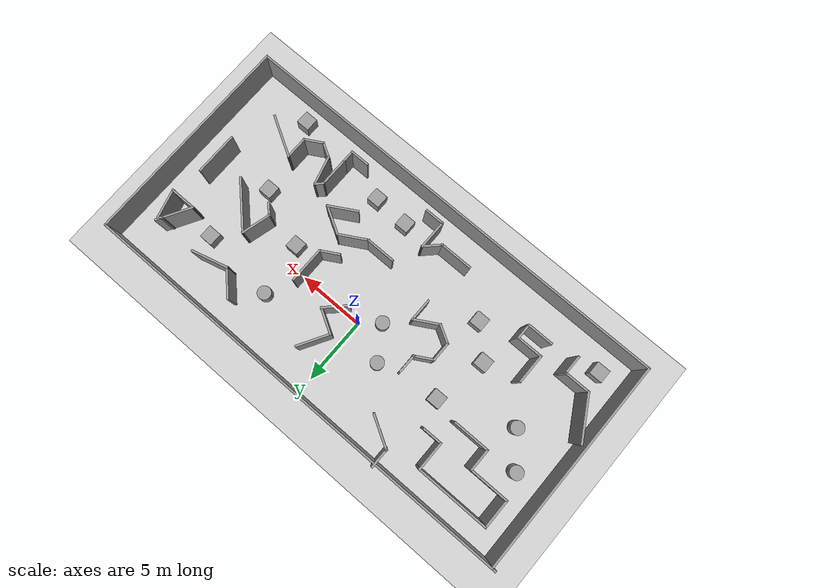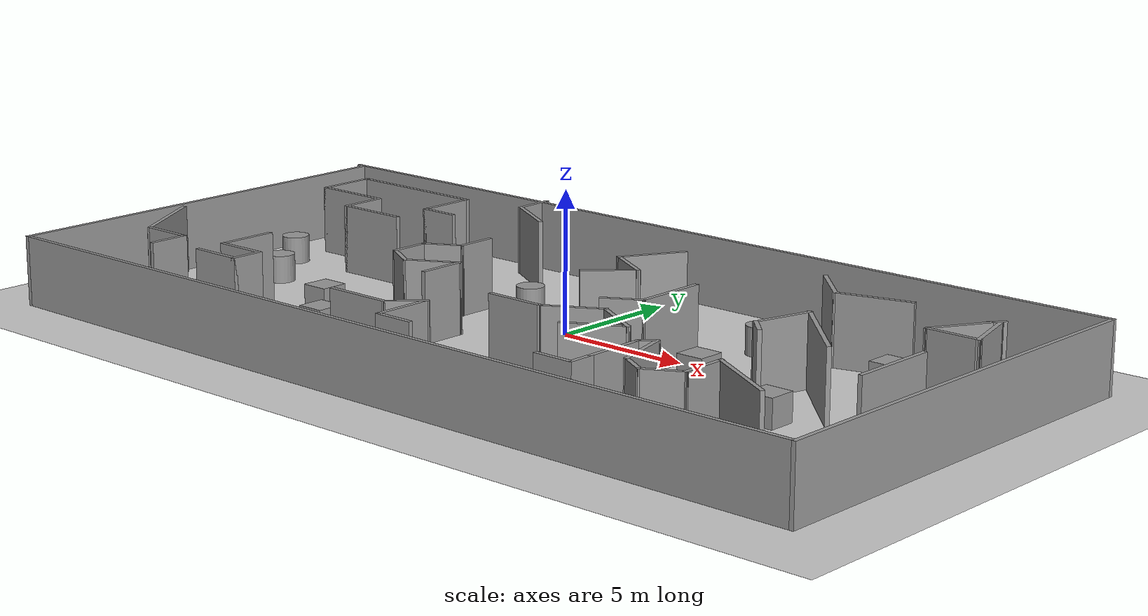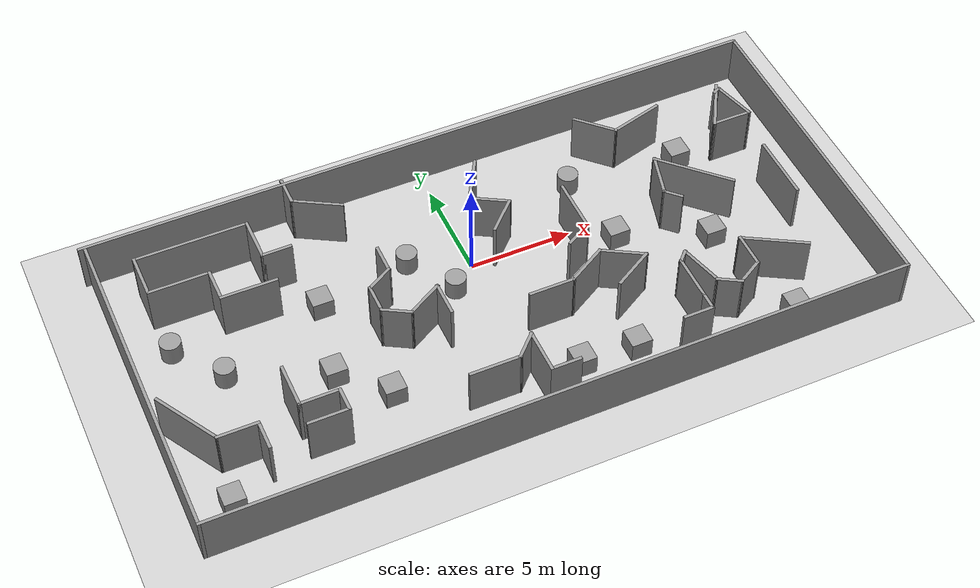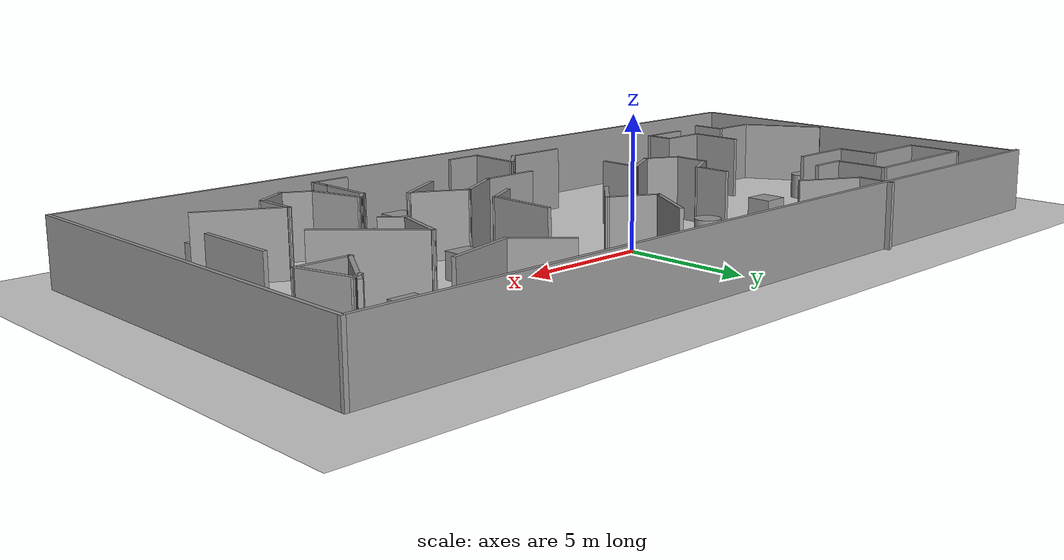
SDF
<sdf version="1.7">
 <world name="default">
  <light name="sun" type="directional">
   <pose>0 0 10 0 -0 0</pose>
   <diffuse>0.8 0.8 0.8 1</diffuse>
   <specular>0.2 0.2 0.2 1</specular>
   <attenuation>
    <range>1000</range>
    <constant>0.9</constant>
    <linear>0.01</linear>
    <quadratic>0.001</quadratic>
   </attenuation>
   <direction>-0.5 0.1 -0.9</direction>
   <spot><inner_angle>0</inner_angle><outer_angle>0</outer_angle><falloff>0</falloff></spot>
  </light>
  <model name="ground_plane">
   <static>1</static>
   <link name="link">
    <collision name="collision">
     <geometry><plane><normal>0 0 1</normal><size>100 100</size></plane></geometry>
     <surface>
      <contact><collide_bitmask>65535</collide_bitmask></contact>
      <friction><ode><mu>100</mu><mu2>50</mu2></ode></friction>
     </surface>
    </collision>
    <visual name="visual">
     <cast_shadows>0</cast_shadows>
     <geometry><plane><normal>0 0 1</normal><size>100 100</size></plane></geometry>
     <material>
      <script><uri>file://media/materials/scripts/gazebo.material</uri><name>Gazebo/Grey</name></script>
     </material>
    </visual>
   </link>
  </model>
  <gravity>0 0 -9.8</gravity>
  <magnetic_field>6e-06 2.3e-05 -4.2e-05</magnetic_field>
  <atmosphere type="adiabatic"/>
  <physics type="ode">
   <max_step_size>0.001</max_step_size>
   <real_time_factor>1</real_time_factor>
   <real_time_update_rate>1000</real_time_update_rate>
  </physics>
  <scene><ambient>0.4 0.4 0.4 1</ambient><background>0.7 0.7 0.7 1</background><shadows>1</shadows></scene>
  <spherical_coordinates>
   <surface_model>EARTH_WGS84</surface_model>
   <latitude_deg>0</latitude_deg>
   <longitude_deg>0</longitude_deg>
   <elevation>0</elevation>
   <heading_deg>0</heading_deg>
  </spherical_coordinates>
  <model name="maze">
   <pose>0.2126 -1.7126 0 0 -0 0</pose>
   <link name="Wall_0">
    <collision name="Wall_0_Collision">
     <geometry><box><size>16.25 0.15 2.5</size></box></geometry>
     <pose>0 0 1.25 0 -0 0</pose>
    </collision>
    <visual name="Wall_0_Visual">
     <pose>0 0 1.25 0 -0 0</pose>
     <geometry><box><size>16.25 0.15 2.5</size></box></geometry>
     <material>
      <script><uri>file://media/materials/scripts/gazebo.material</uri><name>Gazebo/Grey</name></script>
      <ambient>1 1 1 1</ambient>
     </material>
     <meta><layer>0</layer></meta>
    </visual>
    <pose>-16.55 -0.107005 0 0 -0 -1.5708</pose>
   </link>
   <link name="Wall_1">
    <collision name="Wall_1_Collision">
     <geometry><box><size>33.5 0.15 2.5</size></box></geometry>
     <pose>0 0 1.25 0 -0 0</pose>
    </collision>
    <visual name="Wall_1_Visual">
     <pose>0 0 1.25 0 -0 0</pose>
     <geometry><box><size>33.5 0.15 2.5</size></box></geometry>
     <material>
      <script><uri>file://media/materials/scripts/gazebo.material</uri><name>Gazebo/Grey</name></script>
      <ambient>1 1 1 1</ambient>
     </material>
     <meta><layer>0</layer></meta>
    </visual>
    <pose>0.125 -8.157 0 0 -0 0</pose>
   </link>
   <link name="Wall_10">
    <collision name="Wall_10_Collision">
     <geometry><box><size>5.5 0.15 2.5</size></box></geometry>
     <pose>0 0 1.25 0 -0 0</pose>
    </collision>
    <visual name="Wall_10_Visual">
     <pose>0 0 1.25 0 -0 0</pose>
     <geometry><box><size>5.5 0.15 2.5</size></box></geometry>
     <material>
      <script><uri>file://media/materials/scripts/gazebo.material</uri><name>Gazebo/Grey</name></script>
      <ambient>1 1 1 1</ambient>
     </material>
     <meta><layer>0</layer></meta>
    </visual>
    <pose>-12.0559 6.33792 0 0 -0 0</pose>
   </link>
   <link name="Wall_11">
    <collision name="Wall_11_Collision">
     <geometry><box><size>2.25 0.15 2.5</size></box></geometry>
     <pose>0 0 1.25 0 -0 0</pose>
    </collision>
    <visual name="Wall_11_Visual">
     <pose>0 0 1.25 0 -0 0</pose>
     <geometry><box><size>2.25 0.15 2.5</size></box></geometry>
     <material>
      <script><uri>file://media/materials/scripts/gazebo.material</uri><name>Gazebo/Grey</name></script>
      <ambient>1 1 1 1</ambient>
     </material>
     <meta><layer>0</layer></meta>
    </visual>
    <pose>-9.38091 5.28792 0 0 -0 -1.5708</pose>
   </link>
   <link name="Wall_12">
    <collision name="Wall_12_Collision">
     <geometry><box><size>1.5 0.15 2.5</size></box></geometry>
     <pose>0 0 1.25 0 -0 0</pose>
    </collision>
    <visual name="Wall_12_Visual">
     <pose>0 0 1.25 0 -0 0</pose>
     <geometry><box><size>1.5 0.15 2.5</size></box></geometry>
     <material>
      <script><uri>file://media/materials/scripts/gazebo.material</uri><name>Gazebo/Grey</name></script>
      <ambient>1 1 1 1</ambient>
     </material>
     <meta><layer>0</layer></meta>
    </visual>
    <pose>-8.70592 4.23792 0 0 -0 0</pose>
   </link>
   <link name="Wall_14">
    <collision name="Wall_14_Collision">
     <geometry><box><size>2.25 0.15 2.5</size></box></geometry>
     <pose>0 0 1.25 0 -0 0</pose>
    </collision>
    <visual name="Wall_14_Visual">
     <pose>0 0 1.25 0 -0 0</pose>
     <geometry><box><size>2.25 0.15 2.5</size></box></geometry>
     <material>
      <script><uri>file://media/materials/scripts/gazebo.material</uri><name>Gazebo/Grey</name></script>
      <ambient>1 1 1 1</ambient>
     </material>
     <meta><layer>0</layer></meta>
    </visual>
    <pose>-10.7717 -3.16547 0 0 -0 -1.5708</pose>
   </link>
   <link name="Wall_15">
    <collision name="Wall_15_Collision">
     <geometry><box><size>2 0.15 2.5</size></box></geometry>
     <pose>0 0 1.25 0 -0 0</pose>
    </collision>
    <visual name="Wall_15_Visual">
     <pose>0 0 1.25 0 -0 0</pose>
     <geometry><box><size>2 0.15 2.5</size></box></geometry>
     <material>
      <script><uri>file://media/materials/scripts/gazebo.material</uri><name>Gazebo/Grey</name></script>
      <ambient>1 1 1 1</ambient>
     </material>
     <meta><layer>0</layer></meta>
    </visual>
    <pose>-9.84673 -4.21547 0 0 -0 0</pose>
   </link>
   <link name="Wall_16">
    <collision name="Wall_16_Collision">
     <geometry><box><size>1.25 0.15 2.5</size></box></geometry>
     <pose>0 0 1.25 0 -0 0</pose>
    </collision>
    <visual name="Wall_16_Visual">
     <pose>0 0 1.25 0 -0 0</pose>
     <geometry><box><size>1.25 0.15 2.5</size></box></geometry>
     <material>
      <script><uri>file://media/materials/scripts/gazebo.material</uri><name>Gazebo/Grey</name></script>
      <ambient>1 1 1 1</ambient>
     </material>
     <meta><layer>0</layer></meta>
    </visual>
    <pose>-8.92173 -4.76548 0 0 -0 -1.5708</pose>
   </link>
   <link name="Wall_17">
    <collision name="Wall_17_Collision">
     <geometry><box><size>2 0.15 2.5</size></box></geometry>
     <pose>0 0 1.25 0 -0 0</pose>
    </collision>
    <visual name="Wall_17_Visual">
     <pose>0 0 1.25 0 -0 0</pose>
     <geometry><box><size>2 0.15 2.5</size></box></geometry>
     <material>
      <script><uri>file://media/materials/scripts/gazebo.material</uri><name>Gazebo/Grey</name></script>
      <ambient>1 1 1 1</ambient>
     </material>
     <meta><layer>0</layer></meta>
    </visual>
    <pose>-9.84673 -5.31548 0 0 -0 3.14159</pose>
   </link>
   <link name="Wall_19">
    <collision name="Wall_19_Collision">
     <geometry><box><size>1.5 0.15 2.5</size></box></geometry>
     <pose>0 0 1.25 0 -0 0</pose>
    </collision>
    <visual name="Wall_19_Visual">
     <pose>0 0 1.25 0 -0 0</pose>
     <geometry><box><size>1.5 0.15 2.5</size></box></geometry>
     <material>
      <script><uri>file://media/materials/scripts/gazebo.material</uri><name>Gazebo/Grey</name></script>
      <ambient>1 1 1 1</ambient>
     </material>
     <meta><layer>0</layer></meta>
    </visual>
    <pose>-4.51194 1.81074 0 0 -0 -1.5708</pose>
   </link>
   <link name="Wall_2">
    <collision name="Wall_2_Collision">
     <geometry><box><size>16.25 0.15 2.5</size></box></geometry>
     <pose>0 0 1.25 0 -0 0</pose>
    </collision>
    <visual name="Wall_2_Visual">
     <pose>0 0 1.25 0 -0 0</pose>
     <geometry><box><size>16.25 0.15 2.5</size></box></geometry>
     <material>
      <script><uri>file://media/materials/scripts/gazebo.material</uri><name>Gazebo/Grey</name></script>
      <ambient>1 1 1 1</ambient>
     </material>
     <meta><layer>0</layer></meta>
    </visual>
    <pose>16.8 -0.107005 0 0 -0 1.5708</pose>
   </link>
   <link name="Wall_20">
    <collision name="Wall_20_Collision">
     <geometry><box><size>1.5 0.15 2.5</size></box></geometry>
     <pose>0 0 1.25 0 -0 0</pose>
    </collision>
    <visual name="Wall_20_Visual">
     <pose>0 0 1.25 0 -0 0</pose>
     <geometry><box><size>1.5 0.15 2.5</size></box></geometry>
     <material>
      <script><uri>file://media/materials/scripts/gazebo.material</uri><name>Gazebo/Grey</name></script>
      <ambient>1 1 1 1</ambient>
     </material>
     <meta><layer>0</layer></meta>
    </visual>
    <pose>-5.0965 0.79824 0 0 -0 -2.61799</pose>
   </link>
   <link name="Wall_21">
    <collision name="Wall_21_Collision">
     <geometry><box><size>1.5 0.15 2.5</size></box></geometry>
     <pose>0 0 1.25 0 -0 0</pose>
    </collision>
    <visual name="Wall_21_Visual">
     <pose>0 0 1.25 0 -0 0</pose>
     <geometry><box><size>1.5 0.15 2.5</size></box></geometry>
     <material>
      <script><uri>file://media/materials/scripts/gazebo.material</uri><name>Gazebo/Grey</name></script>
      <ambient>1 1 1 1</ambient>
     </material>
     <meta><layer>0</layer></meta>
    </visual>
    <pose>-5.68107 -0.21426 0 0 -0 -1.5708</pose>
   </link>
   <link name="Wall_22">
    <collision name="Wall_22_Collision">
     <geometry><box><size>1.5 0.15 2.5</size></box></geometry>
     <pose>0 0 1.25 0 -0 0</pose>
    </collision>
    <visual name="Wall_22_Visual">
     <pose>0 0 1.25 0 -0 0</pose>
     <geometry><box><size>1.5 0.15 2.5</size></box></geometry>
     <material>
      <script><uri>file://media/materials/scripts/gazebo.material</uri><name>Gazebo/Grey</name></script>
      <ambient>1 1 1 1</ambient>
     </material>
     <meta><layer>0</layer></meta>
    </visual>
    <pose>-5.0965 -1.22676 0 0 -0 -0.523599</pose>
   </link>
   <link name="Wall_23">
    <collision name="Wall_23_Collision">
     <geometry><box><size>2 0.15 2.5</size></box></geometry>
     <pose>0 0 1.25 0 -0 0</pose>
    </collision>
    <visual name="Wall_23_Visual">
     <pose>0 0 1.25 0 -0 0</pose>
     <geometry><box><size>2 0.15 2.5</size></box></geometry>
     <material>
      <script><uri>file://media/materials/scripts/gazebo.material</uri><name>Gazebo/Grey</name></script>
      <ambient>1 1 1 1</ambient>
     </material>
     <meta><layer>0</layer></meta>
    </visual>
    <pose>-3.71087 -1.10176 0 0 -0 0.523599</pose>
   </link>
   <link name="Wall_24">
    <collision name="Wall_24_Collision">
     <geometry><box><size>1.75 0.15 2.5</size></box></geometry>
     <pose>0 0 1.25 0 -0 0</pose>
    </collision>
    <visual name="Wall_24_Visual">
     <pose>0 0 1.25 0 -0 0</pose>
     <geometry><box><size>1.75 0.15 2.5</size></box></geometry>
     <material>
      <script><uri>file://media/materials/scripts/gazebo.material</uri><name>Gazebo/Grey</name></script>
      <ambient>1 1 1 1</ambient>
     </material>
     <meta><layer>0</layer></meta>
    </visual>
    <pose>-2.90979 -1.43926 0 0 -0 -1.5708</pose>
   </link>
   <link name="Wall_26">
    <collision name="Wall_26_Collision">
     <geometry><box><size>2.5 0.15 2.5</size></box></geometry>
     <pose>0 0 1.25 0 -0 0</pose>
    </collision>
    <visual name="Wall_26_Visual">
     <pose>0 0 1.25 0 -0 0</pose>
     <geometry><box><size>2.5 0.15 2.5</size></box></geometry>
     <material>
      <script><uri>file://media/materials/scripts/gazebo.material</uri><name>Gazebo/Grey</name></script>
      <ambient>1 1 1 1</ambient>
     </material>
     <meta><layer>0</layer></meta>
    </visual>
    <pose>1.10685 4.62481 0 0 -0 -2.0944</pose>
   </link>
   <link name="Wall_27">
    <collision name="Wall_27_Collision">
     <geometry><box><size>2 0.15 2.5</size></box></geometry>
     <pose>0 0 1.25 0 -0 0</pose>
    </collision>
    <visual name="Wall_27_Visual">
     <pose>0 0 1.25 0 -0 0</pose>
     <geometry><box><size>2 0.15 2.5</size></box></geometry>
     <material>
      <script><uri>file://media/materials/scripts/gazebo.material</uri><name>Gazebo/Grey</name></script>
      <ambient>1 1 1 1</ambient>
     </material>
     <meta><layer>0</layer></meta>
    </visual>
    <pose>1.32043 3.14473 0 0 -0 -0.523599</pose>
   </link>
   <link name="Wall_28">
    <collision name="Wall_28_Collision">
     <geometry><box><size>2 0.15 2.5</size></box></geometry>
     <pose>0 0 1.25 0 -0 0</pose>
    </collision>
    <visual name="Wall_28_Visual">
     <pose>0 0 1.25 0 -0 0</pose>
     <geometry><box><size>2 0.15 2.5</size></box></geometry>
     <material>
      <script><uri>file://media/materials/scripts/gazebo.material</uri><name>Gazebo/Grey</name></script>
      <ambient>1 1 1 1</ambient>
     </material>
     <meta><layer>0</layer></meta>
    </visual>
    <pose>1.46742 2.02815 0 0 -0 -2.35619</pose>
   </link>
   <link name="Wall_3">
    <collision name="Wall_3_Collision">
     <geometry><box><size>33.75 0.15 2.5</size></box></geometry>
     <pose>0 0 1.25 0 -0 0</pose>
    </collision>
    <visual name="Wall_3_Visual">
     <pose>0 0 1.25 0 -0 0</pose>
     <geometry><box><size>33.75 0.15 2.5</size></box></geometry>
     <material>
      <script><uri>file://media/materials/scripts/gazebo.material</uri><name>Gazebo/Grey</name></script>
      <ambient>1 1 1 1</ambient>
     </material>
     <meta><layer>0</layer></meta>
    </visual>
    <pose>-0 7.943 0 0 -0 3.14159</pose>
   </link>
   <link name="Wall_30">
    <collision name="Wall_30_Collision">
     <geometry><box><size>2.75 0.15 2.5</size></box></geometry>
     <pose>0 0 1.25 0 -0 0</pose>
    </collision>
    <visual name="Wall_30_Visual">
     <pose>0 0 1.25 0 -0 0</pose>
     <geometry><box><size>2.75 0.15 2.5</size></box></geometry>
     <material>
      <script><uri>file://media/materials/scripts/gazebo.material</uri><name>Gazebo/Grey</name></script>
      <ambient>1 1 1 1</ambient>
     </material>
     <meta><layer>0</layer></meta>
    </visual>
    <pose>4.74399 1.18574 0 0 -0 -1.5708</pose>
   </link>
   <link name="Wall_31">
    <collision name="Wall_31_Collision">
     <geometry><box><size>1.5 0.15 2.5</size></box></geometry>
     <pose>0 0 1.25 0 -0 0</pose>
    </collision>
    <visual name="Wall_31_Visual">
     <pose>0 0 1.25 0 -0 0</pose>
     <geometry><box><size>1.5 0.15 2.5</size></box></geometry>
     <material>
      <script><uri>file://media/materials/scripts/gazebo.material</uri><name>Gazebo/Grey</name></script>
      <ambient>1 1 1 1</ambient>
     </material>
     <meta><layer>0</layer></meta>
    </visual>
    <pose>4.15943 -0.45176 0 0 -0 -2.61799</pose>
   </link>
   <link name="Wall_33">
    <collision name="Wall_33_Collision">
     <geometry><box><size>2.5 0.15 2.5</size></box></geometry>
     <pose>0 0 1.25 0 -0 0</pose>
    </collision>
    <visual name="Wall_33_Visual">
     <pose>0 0 1.25 0 -0 0</pose>
     <geometry><box><size>2.5 0.15 2.5</size></box></geometry>
     <material>
      <script><uri>file://media/materials/scripts/gazebo.material</uri><name>Gazebo/Grey</name></script>
      <ambient>1 1 1 1</ambient>
     </material>
     <meta><layer>0</layer></meta>
    </visual>
    <pose>-2.37389 -5.75364 0 0 -0 0</pose>
   </link>
   <link name="Wall_34">
    <collision name="Wall_34_Collision">
     <geometry><box><size>1.5 0.15 2.5</size></box></geometry>
     <pose>0 0 1.25 0 -0 0</pose>
    </collision>
    <visual name="Wall_34_Visual">
     <pose>0 0 1.25 0 -0 0</pose>
     <geometry><box><size>1.5 0.15 2.5</size></box></geometry>
     <material>
      <script><uri>file://media/materials/scripts/gazebo.material</uri><name>Gazebo/Grey</name></script>
      <ambient>1 1 1 1</ambient>
     </material>
     <meta><layer>0</layer></meta>
    </visual>
    <pose>-0.721596 -5.27635 0 0 -0 0.785398</pose>
   </link>
   <link name="Wall_35">
    <collision name="Wall_35_Collision">
     <geometry><box><size>2.25 0.15 2.5</size></box></geometry>
     <pose>0 0 1.25 0 -0 0</pose>
    </collision>
    <visual name="Wall_35_Visual">
     <pose>0 0 1.25 0 -0 0</pose>
     <geometry><box><size>2.25 0.15 2.5</size></box></geometry>
     <material>
      <script><uri>file://media/materials/scripts/gazebo.material</uri><name>Gazebo/Grey</name></script>
      <ambient>1 1 1 1</ambient>
     </material>
     <meta><layer>0</layer></meta>
    </visual>
    <pose>-0.244299 -5.84905 0 0 -0 -1.5708</pose>
   </link>
   <link name="Wall_36">
    <collision name="Wall_36_Collision">
     <geometry><box><size>1.5 0.15 2.5</size></box></geometry>
     <pose>0 0 1.25 0 -0 0</pose>
    </collision>
    <visual name="Wall_36_Visual">
     <pose>0 0 1.25 0 -0 0</pose>
     <geometry><box><size>1.5 0.15 2.5</size></box></geometry>
     <material>
      <script><uri>file://media/materials/scripts/gazebo.material</uri><name>Gazebo/Grey</name></script>
      <ambient>1 1 1 1</ambient>
     </material>
     <meta><layer>0</layer></meta>
    </visual>
    <pose>0.430701 -6.89905 0 0 -0 0</pose>
   </link>
   <link name="Wall_38">
    <collision name="Wall_38_Collision">
     <geometry><box><size>2.25 0.15 2.5</size></box></geometry>
     <pose>0 0 1.25 0 -0 0</pose>
    </collision>
    <visual name="Wall_38_Visual">
     <pose>0 0 1.25 0 -0 0</pose>
     <geometry><box><size>2.25 0.15 2.5</size></box></geometry>
     <material>
      <script><uri>file://media/materials/scripts/gazebo.material</uri><name>Gazebo/Grey</name></script>
      <ambient>1 1 1 1</ambient>
     </material>
     <meta><layer>0</layer></meta>
    </visual>
    <pose>5.49281 -3.30255 0 0 -0 0.523599</pose>
   </link>
   <link name="Wall_39">
    <collision name="Wall_39_Collision">
     <geometry><box><size>2.25 0.15 2.5</size></box></geometry>
     <pose>0 0 1.25 0 -0 0</pose>
    </collision>
    <visual name="Wall_39_Visual">
     <pose>0 0 1.25 0 -0 0</pose>
     <geometry><box><size>2.25 0.15 2.5</size></box></geometry>
     <material>
      <script><uri>file://media/materials/scripts/gazebo.material</uri><name>Gazebo/Grey</name></script>
      <ambient>1 1 1 1</ambient>
     </material>
     <meta><layer>0</layer></meta>
    </visual>
    <pose>5.49281 -2.25256 0 0 -0 2.61799</pose>
   </link>
   <link name="Wall_40">
    <collision name="Wall_40_Collision">
     <geometry><box><size>2.25 0.15 2.5</size></box></geometry>
     <pose>0 0 1.25 0 -0 0</pose>
    </collision>
    <visual name="Wall_40_Visual">
     <pose>0 0 1.25 0 -0 0</pose>
     <geometry><box><size>2.25 0.15 2.5</size></box></geometry>
     <material>
      <script><uri>file://media/materials/scripts/gazebo.material</uri><name>Gazebo/Grey</name></script>
      <ambient>1 1 1 1</ambient>
     </material>
     <meta><layer>0</layer></meta>
    </visual>
    <pose>3.67416 -2.25256 0 0 -0 -2.61799</pose>
   </link>
   <link name="Wall_41">
    <collision name="Wall_41_Collision">
     <geometry><box><size>2.25 0.15 2.5</size></box></geometry>
     <pose>0 0 1.25 0 -0 0</pose>
    </collision>
    <visual name="Wall_41_Visual">
     <pose>0 0 1.25 0 -0 0</pose>
     <geometry><box><size>2.25 0.15 2.5</size></box></geometry>
     <material>
      <script><uri>file://media/materials/scripts/gazebo.material</uri><name>Gazebo/Grey</name></script>
      <ambient>1 1 1 1</ambient>
     </material>
     <meta><layer>0</layer></meta>
    </visual>
    <pose>1.71483 -2.77755 0 0 -0 3.14159</pose>
   </link>
   <link name="Wall_45">
    <collision name="Wall_45_Collision">
     <geometry><box><size>1.5 0.15 2.5</size></box></geometry>
     <pose>0 0 1.25 0 -0 0</pose>
    </collision>
    <visual name="Wall_45_Visual">
     <pose>0 0 1.25 0 -0 0</pose>
     <geometry><box><size>1.5 0.15 2.5</size></box></geometry>
     <material>
      <script><uri>file://media/materials/scripts/gazebo.material</uri><name>Gazebo/Grey</name></script>
      <ambient>1 1 1 1</ambient>
     </material>
     <meta><layer>0</layer></meta>
    </visual>
    <pose>-7.02656 7.48201 0 0 -0 -1.5708</pose>
   </link>
   <link name="Wall_46">
    <collision name="Wall_46_Collision">
     <geometry><box><size>2.5 0.15 2.5</size></box></geometry>
     <pose>0 0 1.25 0 -0 0</pose>
    </collision>
    <visual name="Wall_46_Visual">
     <pose>0 0 1.25 0 -0 0</pose>
     <geometry><box><size>2.5 0.15 2.5</size></box></geometry>
     <material>
      <script><uri>file://media/materials/scripts/gazebo.material</uri><name>Gazebo/Grey</name></script>
      <ambient>1 1 1 1</ambient>
     </material>
     <meta><layer>0</layer></meta>
    </visual>
    <pose>-6.00898 6.2195 0 0 -0 -0.523599</pose>
   </link>
   <link name="Wall_48">
    <collision name="Wall_48_Collision">
     <geometry><box><size>3.5 0.15 2.5</size></box></geometry>
     <pose>0 0 1.25 0 -0 0</pose>
    </collision>
    <visual name="Wall_48_Visual">
     <pose>0 0 1.25 0 -0 0</pose>
     <geometry><box><size>3.5 0.15 2.5</size></box></geometry>
     <material>
      <script><uri>file://media/materials/scripts/gazebo.material</uri><name>Gazebo/Grey</name></script>
      <ambient>1 1 1 1</ambient>
     </material>
     <meta><layer>0</layer></meta>
    </visual>
    <pose>-15.338 -2.97754 0 0 -0 -1.0472</pose>
   </link>
   <link name="Wall_49">
    <collision name="Wall_49_Collision">
     <geometry><box><size>2 0.15 2.5</size></box></geometry>
     <pose>0 0 1.25 0 -0 0</pose>
    </collision>
    <visual name="Wall_49_Visual">
     <pose>0 0 1.25 0 -0 0</pose>
     <geometry><box><size>2 0.15 2.5</size></box></geometry>
     <material>
      <script><uri>file://media/materials/scripts/gazebo.material</uri><name>Gazebo/Grey</name></script>
      <ambient>1 1 1 1</ambient>
     </material>
     <meta><layer>0</layer></meta>
    </visual>
    <pose>-13.5755 -4.42813 0 0 -0 0</pose>
   </link>
   <link name="Wall_5">
    <collision name="Wall_5_Collision">
     <geometry><box><size>2.25 0.15 2.5</size></box></geometry>
     <pose>0 0 1.25 0 -0 0</pose>
    </collision>
    <visual name="Wall_5_Visual">
     <pose>0 0 1.25 0 -0 0</pose>
     <geometry><box><size>2.25 0.15 2.5</size></box></geometry>
     <material>
      <script><uri>file://media/materials/scripts/gazebo.material</uri><name>Gazebo/Grey</name></script>
      <ambient>1 1 1 1</ambient>
     </material>
     <meta><layer>0</layer></meta>
    </visual>
    <pose>-14.7309 5.28792 0 0 -0 -1.5708</pose>
   </link>
   <link name="Wall_50">
    <collision name="Wall_50_Collision">
     <geometry><box><size>1.5 0.15 2.5</size></box></geometry>
     <pose>0 0 1.25 0 -0 0</pose>
    </collision>
    <visual name="Wall_50_Visual">
     <pose>0 0 1.25 0 -0 0</pose>
     <geometry><box><size>1.5 0.15 2.5</size></box></geometry>
     <material>
      <script><uri>file://media/materials/scripts/gazebo.material</uri><name>Gazebo/Grey</name></script>
      <ambient>1 1 1 1</ambient>
     </material>
     <meta><layer>0</layer></meta>
    </visual>
    <pose>-12.6505 -5.10313 0 0 -0 -1.5708</pose>
   </link>
   <link name="Wall_52">
    <collision name="Wall_52_Collision">
     <geometry><box><size>2.75 0.15 2.5</size></box></geometry>
     <pose>0 0 1.25 0 -0 0</pose>
    </collision>
    <visual name="Wall_52_Visual">
     <pose>0 0 1.25 0 -0 0</pose>
     <geometry><box><size>2.75 0.15 2.5</size></box></geometry>
     <material>
      <script><uri>file://media/materials/scripts/gazebo.material</uri><name>Gazebo/Grey</name></script>
      <ambient>1 1 1 1</ambient>
     </material>
     <meta><layer>0</layer></meta>
    </visual>
    <pose>9.90859 5.09191 0 0 -0 -2.87979</pose>
   </link>
   <link name="Wall_53">
    <collision name="Wall_53_Collision">
     <geometry><box><size>2.25 0.15 2.5</size></box></geometry>
     <pose>0 0 1.25 0 -0 0</pose>
    </collision>
    <visual name="Wall_53_Visual">
     <pose>0 0 1.25 0 -0 0</pose>
     <geometry><box><size>2.25 0.15 2.5</size></box></geometry>
     <material>
      <script><uri>file://media/materials/scripts/gazebo.material</uri><name>Gazebo/Grey</name></script>
      <ambient>1 1 1 1</ambient>
     </material>
     <meta><layer>0</layer></meta>
    </visual>
    <pose>7.91043 5.49791 0 0 -0 2.35619</pose>
   </link>
   <link name="Wall_55">
    <collision name="Wall_55_Collision">
     <geometry><box><size>4 0.15 2.5</size></box></geometry>
     <pose>0 0 1.25 0 -0 0</pose>
    </collision>
    <visual name="Wall_55_Visual">
     <pose>0 0 1.25 0 -0 0</pose>
     <geometry><box><size>4 0.15 2.5</size></box></geometry>
     <material>
      <script><uri>file://media/materials/scripts/gazebo.material</uri><name>Gazebo/Grey</name></script>
      <ambient>1 1 1 1</ambient>
     </material>
     <meta><layer>0</layer></meta>
    </visual>
    <pose>10.8197 0.957786 0 0 -0 2.35619</pose>
   </link>
   <link name="Wall_56">
    <collision name="Wall_56_Collision">
     <geometry><box><size>2.25 0.15 2.5</size></box></geometry>
     <pose>0 0 1.25 0 -0 0</pose>
    </collision>
    <visual name="Wall_56_Visual">
     <pose>0 0 1.25 0 -0 0</pose>
     <geometry><box><size>2.25 0.15 2.5</size></box></geometry>
     <material>
      <script><uri>file://media/materials/scripts/gazebo.material</uri><name>Gazebo/Grey</name></script>
      <ambient>1 1 1 1</ambient>
     </material>
     <meta><layer>0</layer></meta>
    </visual>
    <pose>9.18672 1.30474 0 0 -0 -1.8326</pose>
   </link>
   <link name="Wall_57">
    <collision name="Wall_57_Collision">
     <geometry><box><size>1 0.15 2.5</size></box></geometry>
     <pose>0 0 1.25 0 -0 0</pose>
    </collision>
    <visual name="Wall_57_Visual">
     <pose>0 0 1.25 0 -0 0</pose>
     <geometry><box><size>1 0.15 2.5</size></box></geometry>
     <material>
      <script><uri>file://media/materials/scripts/gazebo.material</uri><name>Gazebo/Grey</name></script>
      <ambient>1 1 1 1</ambient>
     </material>
     <meta><layer>0</layer></meta>
    </visual>
    <pose>9.21548 -0.009998 0 0 -0 -0.785398</pose>
   </link>
   <link name="Wall_59">
    <collision name="Wall_59_Collision">
     <geometry><box><size>3.25 0.15 2.5</size></box></geometry>
     <pose>0 0 1.25 0 -0 0</pose>
    </collision>
    <visual name="Wall_59_Visual">
     <pose>0 0 1.25 0 -0 0</pose>
     <geometry><box><size>3.25 0.15 2.5</size></box></geometry>
     <material>
      <script><uri>file://media/materials/scripts/gazebo.material</uri><name>Gazebo/Grey</name></script>
      <ambient>1 1 1 1</ambient>
     </material>
     <meta><layer>0</layer></meta>
    </visual>
    <pose>12.0691 -4.44362 0 0 -0 2.61799</pose>
   </link>
   <link name="Wall_6">
    <collision name="Wall_6_Collision">
     <geometry><box><size>3 0.15 2.5</size></box></geometry>
     <pose>0 0 1.25 0 -0 0</pose>
    </collision>
    <visual name="Wall_6_Visual">
     <pose>0 0 1.25 0 -0 0</pose>
     <geometry><box><size>3 0.15 2.5</size></box></geometry>
     <material>
      <script><uri>file://media/materials/scripts/gazebo.material</uri><name>Gazebo/Grey</name></script>
      <ambient>1 1 1 1</ambient>
     </material>
     <meta><layer>0</layer></meta>
    </visual>
    <pose>-13.3059 4.23792 0 0 -0 0</pose>
   </link>
   <link name="Wall_60">
    <collision name="Wall_60_Collision">
     <geometry><box><size>1.75 0.15 2.5</size></box></geometry>
     <pose>0 0 1.25 0 -0 0</pose>
    </collision>
    <visual name="Wall_60_Visual">
     <pose>0 0 1.25 0 -0 0</pose>
     <geometry><box><size>1.75 0.15 2.5</size></box></geometry>
     <material>
      <script><uri>file://media/materials/scripts/gazebo.material</uri><name>Gazebo/Grey</name></script>
      <ambient>1 1 1 1</ambient>
     </material>
     <meta><layer>0</layer></meta>
    </visual>
    <pose>10.7267 -4.46862 0 0 -0 -1.5708</pose>
   </link>
   <link name="Wall_61">
    <collision name="Wall_61_Collision">
     <geometry><box><size>1.5 0.15 2.5</size></box></geometry>
     <pose>0 0 1.25 0 -0 0</pose>
    </collision>
    <visual name="Wall_61_Visual">
     <pose>0 0 1.25 0 -0 0</pose>
     <geometry><box><size>1.5 0.15 2.5</size></box></geometry>
     <material>
      <script><uri>file://media/materials/scripts/gazebo.material</uri><name>Gazebo/Grey</name></script>
      <ambient>1 1 1 1</ambient>
     </material>
     <meta><layer>0</layer></meta>
    </visual>
    <pose>10.1422 -5.60612 0 0 -0 -2.61799</pose>
   </link>
   <link name="Wall_62">
    <collision name="Wall_62_Collision">
     <geometry><box><size>1.25 0.15 2.5</size></box></geometry>
     <pose>0 0 1.25 0 -0 0</pose>
    </collision>
    <visual name="Wall_62_Visual">
     <pose>0 0 1.25 0 -0 0</pose>
     <geometry><box><size>1.25 0.15 2.5</size></box></geometry>
     <material>
      <script><uri>file://media/materials/scripts/gazebo.material</uri><name>Gazebo/Grey</name></script>
      <ambient>1 1 1 1</ambient>
     </material>
     <meta><layer>0</layer></meta>
    </visual>
    <pose>9.08127 -5.66862 0 0 -0 2.61799</pose>
   </link>
   <link name="Wall_63">
    <collision name="Wall_63_Collision">
     <geometry><box><size>2.25 0.15 2.5</size></box></geometry>
     <pose>0 0 1.25 0 -0 0</pose>
    </collision>
    <visual name="Wall_63_Visual">
     <pose>0 0 1.25 0 -0 0</pose>
     <geometry><box><size>2.25 0.15 2.5</size></box></geometry>
     <material>
      <script><uri>file://media/materials/scripts/gazebo.material</uri><name>Gazebo/Grey</name></script>
      <ambient>1 1 1 1</ambient>
     </material>
     <meta><layer>0</layer></meta>
    </visual>
    <pose>8.3332 -4.3794 0 0 -0 1.8326</pose>
   </link>
   <link name="Wall_64">
    <collision name="Wall_64_Collision">
     <geometry><box><size>0.75 0.15 2.5</size></box></geometry>
     <pose>0 0 1.25 0 -0 0</pose>
    </collision>
    <visual name="Wall_64_Visual">
     <pose>0 0 1.25 0 -0 0</pose>
     <geometry><box><size>0.75 0.15 2.5</size></box></geometry>
     <material>
      <script><uri>file://media/materials/scripts/gazebo.material</uri><name>Gazebo/Grey</name></script>
      <ambient>1 1 1 1</ambient>
     </material>
     <meta><layer>0</layer></meta>
    </visual>
    <pose>7.84931 -3.57731 0 0 -0 -2.35619</pose>
   </link>
   <link name="Wall_65">
    <collision name="Wall_65_Collision">
     <geometry><box><size>2.25 0.15 2.5</size></box></geometry>
     <pose>0 0 1.25 0 -0 0</pose>
    </collision>
    <visual name="Wall_65_Visual">
     <pose>0 0 1.25 0 -0 0</pose>
     <geometry><box><size>2.25 0.15 2.5</size></box></geometry>
     <material>
      <script><uri>file://media/materials/scripts/gazebo.material</uri><name>Gazebo/Grey</name></script>
      <ambient>1 1 1 1</ambient>
     </material>
     <meta><layer>0</layer></meta>
    </visual>
    <pose>7.63718 -4.83944 0 0 -0 -1.5708</pose>
   </link>
   <link name="Wall_66">
    <collision name="Wall_66_Collision">
     <geometry><box><size>1 0.15 2.5</size></box></geometry>
     <pose>0 0 1.25 0 -0 0</pose>
    </collision>
    <visual name="Wall_66_Visual">
     <pose>0 0 1.25 0 -0 0</pose>
     <geometry><box><size>1 0.15 2.5</size></box></geometry>
     <material>
      <script><uri>file://media/materials/scripts/gazebo.material</uri><name>Gazebo/Grey</name></script>
      <ambient>1 1 1 1</ambient>
     </material>
     <meta><layer>0</layer></meta>
    </visual>
    <pose>7.63718 -6.31444 0 0 -0 -1.5708</pose>
   </link>
   <link name="Wall_67">
    <collision name="Wall_67_Collision">
     <geometry><box><size>1.5 0.15 2.5</size></box></geometry>
     <pose>0 0 1.25 0 -0 0</pose>
    </collision>
    <visual name="Wall_67_Visual">
     <pose>0 0 1.25 0 -0 0</pose>
     <geometry><box><size>1.5 0.15 2.5</size></box></geometry>
     <material>
      <script><uri>file://media/materials/scripts/gazebo.material</uri><name>Gazebo/Grey</name></script>
      <ambient>1 1 1 1</ambient>
     </material>
     <meta><layer>0</layer></meta>
    </visual>
    <pose>6.96218 -6.73944 0 0 -0 3.14159</pose>
   </link>
   <link name="Wall_69">
    <collision name="Wall_69_Collision">
     <geometry><box><size>2.75 0.15 2.5</size></box></geometry>
     <pose>0 0 1.25 0 -0 0</pose>
    </collision>
    <visual name="Wall_69_Visual">
     <pose>0 0 1.25 0 -0 0</pose>
     <geometry><box><size>2.75 0.15 2.5</size></box></geometry>
     <material>
      <script><uri>file://media/materials/scripts/gazebo.material</uri><name>Gazebo/Grey</name></script>
      <ambient>1 1 1 1</ambient>
     </material>
     <meta><layer>0</layer></meta>
    </visual>
    <pose>13.8315 4.35605 0 0 -0 -2.0944</pose>
   </link>
   <link name="Wall_7">
    <collision name="Wall_7_Collision">
     <geometry><box><size>1.75 0.15 2.5</size></box></geometry>
     <pose>0 0 1.25 0 -0 0</pose>
    </collision>
    <visual name="Wall_7_Visual">
     <pose>0 0 1.25 0 -0 0</pose>
     <geometry><box><size>1.75 0.15 2.5</size></box></geometry>
     <material>
      <script><uri>file://media/materials/scripts/gazebo.material</uri><name>Gazebo/Grey</name></script>
      <ambient>1 1 1 1</ambient>
     </material>
     <meta><layer>0</layer></meta>
    </visual>
    <pose>-11.8809 3.43792 0 0 -0 -1.5708</pose>
   </link>
   <link name="Wall_70">
    <collision name="Wall_70_Collision">
     <geometry><box><size>2 0.15 2.5</size></box></geometry>
     <pose>0 0 1.25 0 -0 0</pose>
    </collision>
    <visual name="Wall_70_Visual">
     <pose>0 0 1.25 0 -0 0</pose>
     <geometry><box><size>2 0.15 2.5</size></box></geometry>
     <material>
      <script><uri>file://media/materials/scripts/gazebo.material</uri><name>Gazebo/Grey</name></script>
      <ambient>1 1 1 1</ambient>
     </material>
     <meta><layer>0</layer></meta>
    </visual>
    <pose>14.1065 3.23021 0 0 -0 0</pose>
   </link>
   <link name="Wall_71">
    <collision name="Wall_71_Collision">
     <geometry><box><size>2.25 0.15 2.5</size></box></geometry>
     <pose>0 0 1.25 0 -0 0</pose>
    </collision>
    <visual name="Wall_71_Visual">
     <pose>0 0 1.25 0 -0 0</pose>
     <geometry><box><size>2.25 0.15 2.5</size></box></geometry>
     <material>
      <script><uri>file://media/materials/scripts/gazebo.material</uri><name>Gazebo/Grey</name></script>
      <ambient>1 1 1 1</ambient>
     </material>
     <meta><layer>0</layer></meta>
    </visual>
    <pose>14.7597 4.24444 0 0 -0 1.8326</pose>
   </link>
   <link name="Wall_72">
    <collision name="Wall_72_Collision">
     <geometry><box><size>0.5 0.15 2.5</size></box></geometry>
     <pose>0 0 1.25 0 -0 0</pose>
    </collision>
    <visual name="Wall_72_Visual">
     <pose>0 0 1.25 0 -0 0</pose>
     <geometry><box><size>0.5 0.15 2.5</size></box></geometry>
     <material>
      <script><uri>file://media/materials/scripts/gazebo.material</uri><name>Gazebo/Grey</name></script>
      <ambient>1 1 1 1</ambient>
     </material>
     <meta><layer>0</layer></meta>
    </visual>
    <pose>14.3364 5.17116 0 0 -0 -2.61799</pose>
   </link>
   <link name="Wall_74">
    <collision name="Wall_74_Collision">
     <geometry><box><size>3.25 0.15 2.5</size></box></geometry>
     <pose>0 0 1.25 0 -0 0</pose>
    </collision>
    <visual name="Wall_74_Visual">
     <pose>0 0 1.25 0 -0 0</pose>
     <geometry><box><size>3.25 0.15 2.5</size></box></geometry>
     <material>
      <script><uri>file://media/materials/scripts/gazebo.material</uri><name>Gazebo/Grey</name></script>
      <ambient>1 1 1 1</ambient>
     </material>
     <meta><layer>0</layer></meta>
    </visual>
    <pose>14.5885 -0.56233 0 0 -0 -1.5708</pose>
   </link>
   <link name="Wall_8">
    <collision name="Wall_8_Collision">
     <geometry><box><size>2.75 0.15 2.5</size></box></geometry>
     <pose>0 0 1.25 0 -0 0</pose>
    </collision>
    <visual name="Wall_8_Visual">
     <pose>0 0 1.25 0 -0 0</pose>
     <geometry><box><size>2.75 0.15 2.5</size></box></geometry>
     <material>
      <script><uri>file://media/materials/scripts/gazebo.material</uri><name>Gazebo/Grey</name></script>
      <ambient>1 1 1 1</ambient>
     </material>
     <meta><layer>0</layer></meta>
    </visual>
    <pose>-10.5809 2.63792 0 0 -0 0</pose>
   </link>
   <static>1</static>
  </model>
  <model name="unit_cylinder">
   <pose>-2.74871 1.23178 0.499994 -4e-06 -3e-06 -0</pose>
   <link name="link">
    <inertial>
     <mass>1</mass>
     <inertia><ixx>0.145833</ixx><ixy>0</ixy><ixz>0</ixz><iyy>0.145833</iyy><iyz>0</iyz><izz>0.125</izz></inertia>
    </inertial>
    <collision name="collision">
     <geometry><cylinder><radius>0.5</radius><length>1</length></cylinder></geometry>
    </collision>
    <visual name="visual">
     <geometry><cylinder><radius>0.5</radius><length>1</length></cylinder></geometry>
     <material>
      <script><name>Gazebo/Grey</name><uri>file://media/materials/scripts/gazebo.material</uri></script>
     </material>
    </visual>
   </link>
   <static>1</static>
  </model>
  <model name="unit_cylinder_0">
   <pose>-1.26598 -1.05242 0.499993 -0 -0 -0</pose>
   <link name="link">
    <inertial>
     <mass>1</mass>
     <inertia><ixx>0.145833</ixx><ixy>0</ixy><ixz>0</ixz><iyy>0.145833</iyy><iyz>0</iyz><izz>0.125</izz></inertia>
    </inertial>
    <collision name="collision">
     <geometry><cylinder><radius>0.5</radius><length>1</length></cylinder></geometry>
    </collision>
    <visual name="visual">
     <geometry><cylinder><radius>0.5</radius><length>1</length></cylinder></geometry>
     <material>
      <script><name>Gazebo/Grey</name><uri>file://media/materials/scripts/gazebo.material</uri></script>
     </material>
    </visual>
   </link>
   <static>1</static>
  </model>
  <model name="unit_box">
   <pose>-6.17187 -5.45303 0.499995 -1e-05 -0 -0</pose>
   <link name="link">
    <inertial>
     <mass>1</mass>
     <inertia>
      <ixx>0.166667</ixx>
      <ixy>0</ixy>
      <ixz>0</ixz>
      <iyy>0.166667</iyy>
      <iyz>0</iyz>
      <izz>0.166667</izz>
     </inertia>
    </inertial>
    <collision name="collision"><geometry><box><size>1 1 1</size></box></geometry></collision>
    <visual name="visual">
     <geometry><box><size>1 1 1</size></box></geometry>
     <material>
      <script><name>Gazebo/Grey</name><uri>file://media/materials/scripts/gazebo.material</uri></script>
     </material>
    </visual>
   </link>
   <static>1</static>
  </model>
  <model name="unit_box_0">
   <pose>-8.14879 -3.45545 0.499995 0 -1e-05 0</pose>
   <link name="link">
    <inertial>
     <mass>1</mass>
     <inertia>
      <ixx>0.166667</ixx>
      <ixy>0</ixy>
      <ixz>0</ixz>
      <iyy>0.166667</iyy>
      <iyz>0</iyz>
      <izz>0.166667</izz>
     </inertia>
    </inertial>
    <collision name="collision"><geometry><box><size>1 1 1</size></box></geometry></collision>
    <visual name="visual">
     <geometry><box><size>1 1 1</size></box></geometry>
     <material>
      <script><name>Gazebo/Grey</name><uri>file://media/materials/scripts/gazebo.material</uri></script>
     </material>
    </visual>
   </link>
   <static>1</static>
  </model>
  <model name="unit_cylinder_1">
   <pose>6.19032 2.66618 0.499998 3e-06 -3e-06 0</pose>
   <link name="link">
    <inertial>
     <mass>1</mass>
     <inertia><ixx>0.145833</ixx><ixy>0</ixy><ixz>0</ixz><iyy>0.145833</iyy><iyz>0</iyz><izz>0.125</izz></inertia>
    </inertial>
    <collision name="collision">
     <geometry><cylinder><radius>0.5</radius><length>1</length></cylinder></geometry>
    </collision>
    <visual name="visual">
     <geometry><cylinder><radius>0.5</radius><length>1</length></cylinder></geometry>
     <material>
      <script><name>Gazebo/Grey</name><uri>file://media/materials/scripts/gazebo.material</uri></script>
     </material>
    </visual>
   </link>
   <static>1</static>
  </model>
  <model name="unit_box_1">
   <pose>2.07693 -7.37285 0.499995 0 1e-05 0</pose>
   <link name="link">
    <inertial>
     <mass>1</mass>
     <inertia>
      <ixx>0.166667</ixx>
      <ixy>0</ixy>
      <ixz>0</ixz>
      <iyy>0.166667</iyy>
      <iyz>0</iyz>
      <izz>0.166667</izz>
     </inertia>
    </inertial>
    <collision name="collision"><geometry><box><size>1 1 1</size></box></geometry></collision>
    <visual name="visual">
     <geometry><box><size>1 1 1</size></box></geometry>
     <material>
      <script><name>Gazebo/Grey</name><uri>file://media/materials/scripts/gazebo.material</uri></script>
     </material>
    </visual>
   </link>
   <static>1</static>
  </model>
  <model name="unit_cylinder_2">
   <pose>-12.557 -1.57219 0.499992 -3e-06 3e-06 0</pose>
   <link name="link">
    <inertial>
     <mass>1</mass>
     <inertia><ixx>0.145833</ixx><ixy>0</ixy><ixz>0</ixz><iyy>0.145833</iyy><iyz>0</iyz><izz>0.125</izz></inertia>
    </inertial>
    <collision name="collision">
     <geometry><cylinder><radius>0.5</radius><length>1</length></cylinder></geometry>
    </collision>
    <visual name="visual">
     <geometry><cylinder><radius>0.5</radius><length>1</length></cylinder></geometry>
     <material>
      <script><name>Gazebo/Grey</name><uri>file://media/materials/scripts/gazebo.material</uri></script>
     </material>
    </visual>
   </link>
   <static>1</static>
  </model>
  <model name="unit_cylinder_3">
   <pose>-14.3015 0.708044 0.499998 3e-06 -4e-06 0</pose>
   <link name="link">
    <inertial>
     <mass>1</mass>
     <inertia><ixx>0.145833</ixx><ixy>0</ixy><ixz>0</ixz><iyy>0.145833</iyy><iyz>0</iyz><izz>0.125</izz></inertia>
    </inertial>
    <collision name="collision">
     <geometry><cylinder><radius>0.5</radius><length>1</length></cylinder></geometry>
    </collision>
    <visual name="visual">
     <geometry><cylinder><radius>0.5</radius><length>1</length></cylinder></geometry>
     <material>
      <script><name>Gazebo/Grey</name><uri>file://media/materials/scripts/gazebo.material</uri></script>
     </material>
    </visual>
   </link>
   <static>1</static>
  </model>
  <model name="unit_box_2">
   <pose>-14.443 -8.01582 0.499995 0 1e-05 0</pose>
   <link name="link">
    <inertial>
     <mass>1</mass>
     <inertia>
      <ixx>0.166667</ixx>
      <ixy>0</ixy>
      <ixz>0</ixz>
      <iyy>0.166667</iyy>
      <iyz>0</iyz>
      <izz>0.166667</izz>
     </inertia>
    </inertial>
    <collision name="collision"><geometry><box><size>1 1 1</size></box></geometry></collision>
    <visual name="visual">
     <geometry><box><size>1 1 1</size></box></geometry>
     <material>
      <script><name>Gazebo/Grey</name><uri>file://media/materials/scripts/gazebo.material</uri></script>
     </material>
    </visual>
   </link>
   <static>1</static>
  </model>
  <model name="unit_box_3">
   <pose>-7.3162 0.436249 0.499995 -1e-05 -0 -0</pose>
   <link name="link">
    <inertial>
     <mass>1</mass>
     <inertia>
      <ixx>0.166667</ixx>
      <ixy>0</ixy>
      <ixz>0</ixz>
      <iyy>0.166667</iyy>
      <iyz>0</iyz>
      <izz>0.166667</izz>
     </inertia>
    </inertial>
    <collision name="collision"><geometry><box><size>1 1 1</size></box></geometry></collision>
    <visual name="visual">
     <geometry><box><size>1 1 1</size></box></geometry>
     <material>
      <script><name>Gazebo/Grey</name><uri>file://media/materials/scripts/gazebo.material</uri></script>
     </material>
    </visual>
   </link>
   <static>1</static>
  </model>
  <model name="unit_box_4">
   <pose>4.74657 -7.48876 0.499995 0 1e-05 0</pose>
   <link name="link">
    <inertial>
     <mass>1</mass>
     <inertia>
      <ixx>0.166667</ixx>
      <ixy>0</ixy>
      <ixz>0</ixz>
      <iyy>0.166667</iyy>
      <iyz>0</iyz>
      <izz>0.166667</izz>
     </inertia>
    </inertial>
    <collision name="collision"><geometry><box><size>1 1 1</size></box></geometry></collision>
    <visual name="visual">
     <geometry><box><size>1 1 1</size></box></geometry>
     <material>
      <script><name>Gazebo/Grey</name><uri>file://media/materials/scripts/gazebo.material</uri></script>
     </material>
    </visual>
   </link>
   <static>1</static>
  </model>
  <model name="unit_box_5">
   <pose>6.79745 -1.25161 0.499995 -1e-05 -0 -0</pose>
   <link name="link">
    <inertial>
     <mass>1</mass>
     <inertia>
      <ixx>0.166667</ixx>
      <ixy>0</ixy>
      <ixz>0</ixz>
      <iyy>0.166667</iyy>
      <iyz>0</iyz>
      <izz>0.166667</izz>
     </inertia>
    </inertial>
    <collision name="collision"><geometry><box><size>1 1 1</size></box></geometry></collision>
    <visual name="visual">
     <geometry><box><size>1 1 1</size></box></geometry>
     <material>
      <script><name>Gazebo/Grey</name><uri>file://media/materials/scripts/gazebo.material</uri></script>
     </material>
    </visual>
   </link>
   <static>1</static>
  </model>
  <model name="unit_box_6">
   <pose>10.9274 -3.01076 0.499995 0 1e-05 0</pose>
   <link name="link">
    <inertial>
     <mass>1</mass>
     <inertia>
      <ixx>0.166667</ixx>
      <ixy>0</ixy>
      <ixz>0</ixz>
      <iyy>0.166667</iyy>
      <iyz>0</iyz>
      <izz>0.166667</izz>
     </inertia>
    </inertial>
    <collision name="collision"><geometry><box><size>1 1 1</size></box></geometry></collision>
    <visual name="visual">
     <geometry><box><size>1 1 1</size></box></geometry>
     <material>
      <script><name>Gazebo/Grey</name><uri>file://media/materials/scripts/gazebo.material</uri></script>
     </material>
    </visual>
   </link>
   <static>1</static>
  </model>
  <model name="unit_box_7">
   <pose>11.7397 2.12025 0.499995 -1e-05 -0 0</pose>
   <link name="link">
    <inertial>
     <mass>1</mass>
     <inertia>
      <ixx>0.166667</ixx>
      <ixy>0</ixy>
      <ixz>0</ixz>
      <iyy>0.166667</iyy>
      <iyz>0</iyz>
      <izz>0.166667</izz>
     </inertia>
    </inertial>
    <collision name="collision"><geometry><box><size>1 1 1</size></box></geometry></collision>
    <visual name="visual">
     <geometry><box><size>1 1 1</size></box></geometry>
     <material>
      <script><name>Gazebo/Grey</name><uri>file://media/materials/scripts/gazebo.material</uri></script>
     </material>
    </visual>
   </link>
   <static>1</static>
  </model>
  <model name="unit_box_8">
   <pose>12.2723 -8.54609 0.5 0 -0 0</pose>
   <link name="link">
    <inertial>
     <mass>1</mass>
     <inertia>
      <ixx>0.166667</ixx>
      <ixy>0</ixy>
      <ixz>0</ixz>
      <iyy>0.166667</iyy>
      <iyz>0</iyz>
      <izz>0.166667</izz>
     </inertia>
    </inertial>
    <collision name="collision"><geometry><box><size>1 1 1</size></box></geometry></collision>
    <visual name="visual">
     <geometry><box><size>1 1 1</size></box></geometry>
     <material>
      <script><name>Gazebo/Grey</name><uri>file://media/materials/scripts/gazebo.material</uri></script>
     </material>
    </visual>
   </link>
   <static>1</static>
  </model>
 </world>
</sdf>
